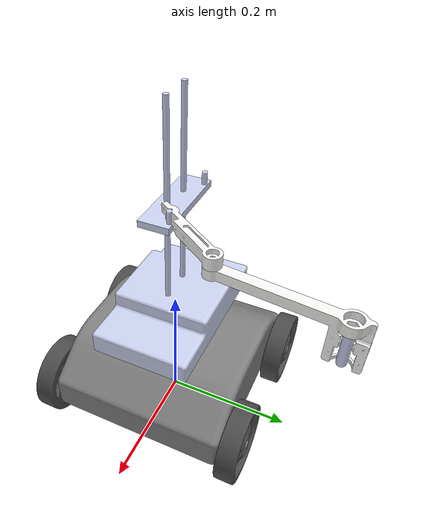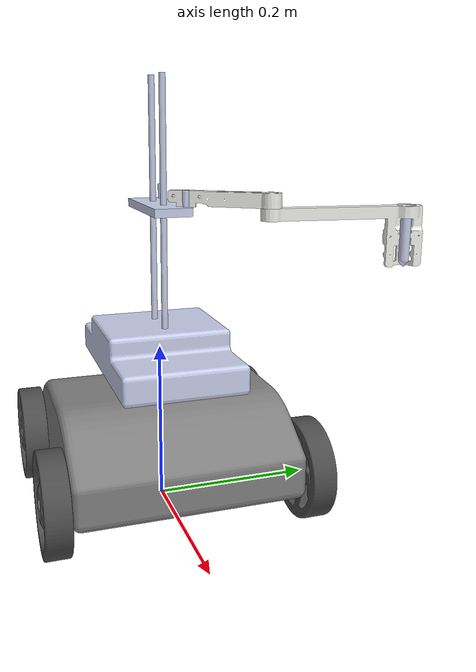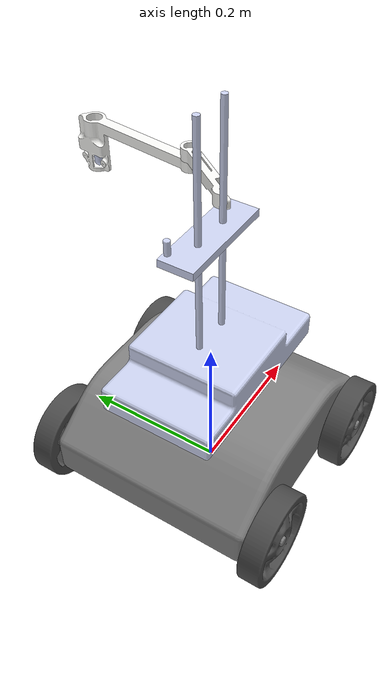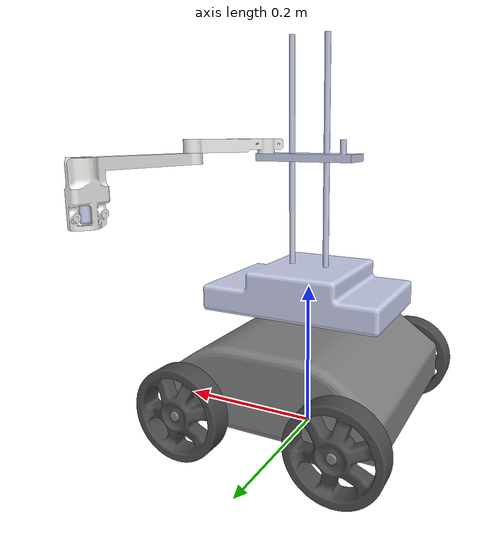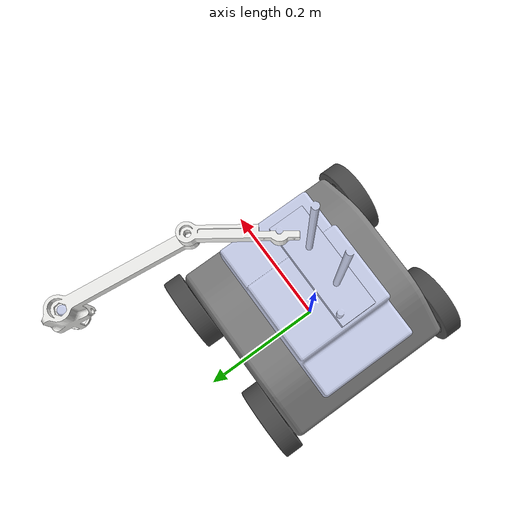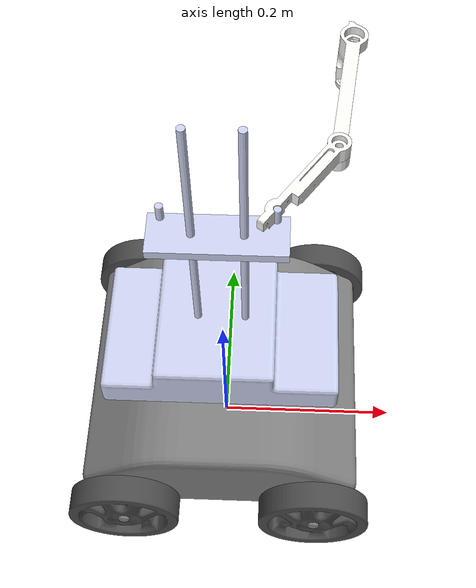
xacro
<?xml version="1.0" encoding="utf-8"?>
<robot
  name="petricor_platform">
  <link
    name="base_link">
    <inertial>
      <origin
        xyz="-4.87809042607272E-17 -2.29618809443724E-17 0.0879972764105627"
        rpy="0 0 0" />
      <mass
        value="5.87636303944341" />
      <inertia
        ixx="0.0760058697508826"
        ixy="1.4007807365218E-17"
        ixz="-4.91658511235952E-18"
        iyy="0.0517448560797098"
        iyz="-9.02756484418171E-19"
        izz="0.113814268741791" />
    </inertial>
    <visual>
      <origin
        xyz="0 0 0"
        rpy="0 0 0" />
      <geometry>
        <mesh
          filename="model://base_link.STL" />
      </geometry>
      <material
        name="">
        <color
          rgba="0.501960784313725 0.501960784313725 0.501960784313725 1" />
      </material>
    </visual>
    <collision>
      <origin
        xyz="0 0 0"
        rpy="0 0 0" />
      <geometry>
        <mesh
          filename="model://base_link.STL" />
      </geometry>
    </collision>
    <self_collide>0</self_collide>
  </link>
  <link
    name="wheel_FL">
    <inertial>
      <origin
        xyz="-0.015313 1.0317E-10 -6.0577E-11"
        rpy="0 0 0" />
      <mass
        value="0.2085" />
      <inertia
        ixx="0.00044907"
        ixy="-3.2704E-13"
        ixz="4.029E-13"
        iyy="0.00023777"
        iyz="-1.0058E-11"
        izz="0.00023777" />
    </inertial>
    <visual>
      <origin
        xyz="0 0 0"
        rpy="0 0 0" />
      <geometry>
        <mesh
          filename="model://wheel_FL.STL" />
      </geometry>
      <material
        name="">
        <color
          rgba="0.29804 0.29804 0.29804 1" />
      </material>
    </visual>
    <collision>
      <origin
        xyz="0 0 0"
        rpy="0 0 0" />
      <geometry>
        <mesh
          filename="model://wheel_FL.STL" />
      </geometry>
      <friction>
        <ode>
          <mu>5.0</mu>
          <mu2>5.0</mu2>
        </ode>
      </friction>
    </collision>
    <self_collide>0</self_collide>
  </link>
  <joint
    name="wheel_FL_rev"
    type="continuous">
    <origin
      xyz="0.10549 0.169 0.061"
      rpy="-0.33421 0 1.5708" />
    <parent
      link="base_link" />
    <child
      link="wheel_FL" />
    <axis
      xyz="-1 0 0" />
    <limit
      lower="0"
      upper="0"
      effort="1000000"
      velocity="1000" />
  </joint>
  <link
    name="wheel_FR">
    <inertial>
      <origin
        xyz="-0.015313 1.0317E-10 -6.0577E-11"
        rpy="0 0 0" />
      <mass
        value="0.2085" />
      <inertia
        ixx="0.00044907"
        ixy="-3.2704E-13"
        ixz="4.029E-13"
        iyy="0.00023777"
        iyz="1.788E-11"
        izz="0.00023777" />
    </inertial>
    <visual>
      <origin
        xyz="0 0 0"
        rpy="0 0 0" />
      <geometry>
        <mesh
          filename="model://wheel_FR.STL" />
      </geometry>
      <material
        name="">
        <color
          rgba="0.29804 0.29804 0.29804 1" />
      </material>
    </visual>
    <collision>
      <origin
        xyz="0 0 0"
        rpy="0 0 0" />
      <geometry>
        <mesh
          filename="model://wheel_FR.STL" />
      </geometry>
      <friction>
        <ode>
          <mu>5.0</mu>
          <mu2>5.0</mu2>
        </ode>
      </friction>
    </collision>
    <self_collide>0</self_collide>
  </link>
  <joint
    name="wheel_FR_rev"
    type="continuous">
    <origin
      xyz="0.10549 -0.169 0.061"
      rpy="-2.9492 0 -1.5708" />
    <parent
      link="base_link" />
    <child
      link="wheel_FR" />
    <axis
      xyz="-1 0 0" />
    <limit
      lower="0"
      upper="0"
      effort="1000000"
      velocity="1000" />
  </joint>
  <link
    name="wheel_BL">
    <inertial>
      <origin
        xyz="-0.015313 1.0317E-10 -6.0577E-11"
        rpy="0 0 0" />
      <mass
        value="0.2085" />
      <inertia
        ixx="0.00044907"
        ixy="-3.2704E-13"
        ixz="4.029E-13"
        iyy="0.00023777"
        iyz="-3.5686E-13"
        izz="0.00023777" />
    </inertial>
    <visual>
      <origin
        xyz="0 0 0"
        rpy="0 0 0" />
      <geometry>
        <mesh
          filename="model://wheel_BL.STL" />
      </geometry>
      <material
        name="">
        <color
          rgba="0.29804 0.29804 0.29804 1" />
      </material>
    </visual>
    <collision>
      <origin
        xyz="0 0 0"
        rpy="0 0 0" />
      <geometry>
        <mesh
          filename="model://wheel_BL.STL" />
      </geometry>
      <friction>
        <ode>
          <mu>5.0</mu>
          <mu2>5.0</mu2>
        </ode>
      </friction>
    </collision>
    <self_collide>0</self_collide>
  </link>
  <joint
    name="wheel_BL_rev"
    type="continuous">
    <origin
      xyz="-0.10549 0.169 0.061"
      rpy="0.82175 0 1.5708" />
    <parent
      link="base_link" />
    <child
      link="wheel_BL" />
    <axis
      xyz="-1 0 0" />
    <limit
      lower="0"
      upper="0"
      effort="1000000"
      velocity="1000" />
  </joint>
  <link
    name="wheel_BR">
    <inertial>
      <origin
        xyz="-0.015313 1.0317E-10 -6.0577E-11"
        rpy="0 0 0" />
      <mass
        value="0.2085" />
      <inertia
        ixx="0.00044907"
        ixy="-3.2704E-13"
        ixz="4.0289E-13"
        iyy="0.00023777"
        iyz="-8.8928E-12"
        izz="0.00023777" />
    </inertial>
    <visual>
      <origin
        xyz="0 0 0"
        rpy="0 0 0" />
      <geometry>
        <mesh
          filename="model://wheel_BR.STL" />
      </geometry>
      <material
        name="">
        <color
          rgba="0.29804 0.29804 0.29804 1" />
      </material>
    </visual>
    <collision>
      <origin
        xyz="0 0 0"
        rpy="0 0 0" />
      <geometry>
        <mesh
          filename="model://wheel_BR.STL" />
      </geometry>
      <friction>
        <ode>
          <mu>5.0</mu>
          <mu2>5.0</mu2>
        </ode>
      </friction>
    </collision>
    <self_collide>0</self_collide>
  </link>
  <joint
    name="wheel_BR_rev"
    type="continuous">
    <origin
      xyz="-0.10549 -0.169 0.061"
      rpy="0.53438 0 -1.5708" />
    <parent
      link="base_link" />
    <child
      link="wheel_BR" />
    <axis
      xyz="-1 0 0" />
    <limit
      lower="0"
      upper="0"
      effort="1000000"
      velocity="1000" />
  </joint>

  <link
    name="arm_base_link">
    <inertial>
      <origin
        xyz="-1.3323E-15 0.001416 0.028579"
        rpy="0 0 0" />
      <mass
        value="1.8167" />
      <inertia
        ixx="0.0092008"
        ixy="4.2883E-17"
        ixz="1.8255E-17"
        iyy="0.0050311"
        iyz="-4.9106E-05"
        izz="0.010824" />
    </inertial>
    <visual>
      <origin
        xyz="0 0 0"
        rpy="0 0 0" />
      <geometry>
        <mesh
          filename="model://arm_base_link.STL" />
      </geometry>
      <material
        name="">
        <color
          rgba="0.79216 0.81961 0.93333 1" />
      </material>
    </visual>
    <collision>
      <origin
        xyz="0 0 0"
        rpy="0 0 0" />
      <geometry>
        <mesh
          filename="model://arm_base_link.STL" />
      </geometry>
    </collision>
  </link>
  <joint
    name="arm_base_joint"
    type="revolute">
    <origin
      xyz="0 0 .17"
      rpy="0 0 1.57079" />
    <parent
      link="base_link" />
    <child
      link="arm_base_link" />
    <axis
      xyz="0 0 1" />
    <limit
      lower="0"
      upper="0"
      effort="0"
      velocity="0" />
  </joint>
  <link
    name="z_link">
    <inertial>
      <origin
        xyz="0.00052515 6.5815E-15 0.0054279"
        rpy="0 0 0" />
      <mass
        value="0.061611" />
      <inertia
        ixx="9.8218E-05"
        ixy="9.7777E-19"
        ixz="-4.4627E-07"
        iyy="1.1718E-05"
        iyz="-1.3574E-18"
        izz="0.00010811" />
    </inertial>
    <visual>
      <origin
        xyz="0 0 0"
        rpy="0 0 0" />
      <geometry>
        <mesh
          filename="model://z_link.STL" />
      </geometry>
      <material
        name="">
        <color
          rgba="0.79216 0.81961 0.93333 1" />
      </material>
    </visual>
    <collision>
      <origin
        xyz="0 0 0"
        rpy="0 0 0" />
      <geometry>
        <mesh
          filename="model://z_link.STL" />
      </geometry>
    </collision>
  </link>
  <joint
    name="z_prism"
    type="prismatic">
    <origin
      xyz="0.00097648 0 0.060561"
      rpy="0 0 0" />
    <parent
      link="arm_base_link" />
    <child
      link="z_link" />
    <axis
      xyz="0 0 1" />
    <limit
      lower="0.01"
      upper="0.27"
      effort="100"
      velocity="100" />
  </joint>
  <link
    name="right_shldr_link">
    <inertial>
      <origin
        xyz="0.052774 0.0011402 -0.0081027"
        rpy="0 0 0" />
      <mass
        value="0.025561" />
      <inertia
        ixx="1.2589E-06"
        ixy="1.5186E-06"
        ixz="2.2459E-07"
        iyy="3.4818E-05"
        iyz="4.9752E-09"
        izz="3.495E-05" />
    </inertial>
    <visual>
      <origin
        xyz="0 0 0"
        rpy="0 0 0" />
      <geometry>
        <mesh
          filename="model://right_shldr_link.STL" />
      </geometry>
      <material
        name="">
        <color
          rgba="0.96471 0.96471 0.95294 1" />
      </material>
    </visual>
    <collision>
      <origin
        xyz="0 0 0"
        rpy="0 0 0" />
      <geometry>
        <mesh
          filename="model://right_shldr_link.STL" />
      </geometry>
    </collision>
  </link>
  <joint
    name="right_shldr_rev"
    type="revolute">
    <origin
      xyz="0.017454 -0.055 0.028419"
      rpy="0 0 -0.61584" />
    <parent
      link="z_link" />
    <child
      link="right_shldr_link" />
    <axis
      xyz="0 0 -1" />
    <limit
      lower="-1.0"
      upper="1.0"
      effort="100"
      velocity="100" />
  </joint>
  <link
    name="right_elbw_link">
    <inertial>
      <origin
        xyz="0.10936 0.0025108 -0.015181"
        rpy="0 0 0" />
      <mass
        value="0.052137" />
      <inertia
        ixx="1.8081E-05"
        ixy="-6.9009E-06"
        ixz="2.9597E-05"
        iyy="0.00019669"
        iyz="2.6836E-06"
        izz="0.00018284" />
    </inertial>
    <visual>
      <origin
        xyz="0 0 0"
        rpy="0 0 0" />
      <geometry>
        <mesh
          filename="model://right_elbw_link.STL" />
      </geometry>
      <material
        name="">
        <color
          rgba="0.96471 0.96471 0.95294 1" />
      </material>
    </visual>
    <collision>
      <origin
        xyz="0 0 0"
        rpy="0 0 0" />
      <geometry>
        <mesh
          filename="model://right_elbw_link.STL" />
      </geometry>
    </collision>
  </link>
  <joint
    name="right_elbw_rev"
    type="revolute">
    <origin
      xyz="0.1 0 -0.018419"
      rpy="0 0 1.4276" />
    <parent
      link="right_shldr_link" />
    <child
      link="right_elbw_link" />
    <axis
      xyz="0 0 -1" />
    <limit
      lower="0.1"
      upper="1.75"
      effort="100"
      velocity="100" />
  </joint>
  <link
    name="EE_link">
    <inertial>
      <origin
        xyz="-7.1124E-15 4.8087E-15 0.030953"
        rpy="0 0 0" />
      <mass
        value="0.0062757" />
      <inertia
        ixx="1.5736E-06"
        ixy="7.714E-35"
        ixz="7.8936E-23"
        iyy="1.5736E-06"
        iyz="2.6001E-22"
        izz="1.1427E-07" />
    </inertial>
    <visual>
      <origin
        xyz="0 0 0"
        rpy="0 0 0" />
      <geometry>
        <mesh
          filename="model://EE_link.STL" />
      </geometry>
      <material
        name="">
        <color
          rgba="0.79216 0.81961 0.93333 1" />
      </material>
    </visual>
    <collision>
      <origin
        xyz="0 0 0"
        rpy="0 0 0" />
      <geometry>
        <mesh
          filename="model://EE_link.STL" />
      </geometry>
    </collision>
  </link>
  <joint
    name="EE_fixed"
    type="fixed">
    <origin
      xyz="0.1618 0 -0.07008"
      rpy="0 0 0" />
    <parent
      link="right_elbw_link" />
    <child
      link="EE_link" />
    <axis
      xyz="0 0 0" />
  </joint>

   <ros2_control name="GazeboSystem" type="system">
    <hardware>
      <plugin>gazebo_ros2_control/GazeboSystem</plugin>
    </hardware>

    <joint name="wheel_FL_rev">
      <command_interface name="velocity">
        <param name="min">"-1000"</param>
        <param name="max">"1000"</param>
      </command_interface>
      <state_interface name="position"/>
      <state_interface name="velocity"/>
      <state_interface name="effort"/>
    </joint>

      <joint name="wheel_FR_rev">
      <command_interface name="velocity">
        <param name="min">"-1000"</param>
        <param name="max">"1000"</param>
      </command_interface>
      <state_interface name="position"/>
      <state_interface name="velocity"/>
      <state_interface name="effort"/>
    </joint>

      <joint name="wheel_BL_rev">
      <command_interface name="velocity">
        <param name="min">"-1000"</param>
        <param name="max">"1000"</param>
      </command_interface>
      <state_interface name="position"/>
      <state_interface name="velocity"/>
      <state_interface name="effort"/>
    </joint>

      <joint name="wheel_BR_rev">
      <command_interface name="velocity">
        <param name="min">"-1000"</param>
        <param name="max">"1000"</param>
      </command_interface>
      <state_interface name="position"/>
      <state_interface name="velocity"/>
      <state_interface name="effort"/>
    </joint>

    <joint name="right_shldr_rev">
      <command_interface name="position">
        <param name="min">"-1000"</param>
        <param name="max">"1000"</param>
      </command_interface>
      <state_interface name="position"/>
      <state_interface name="velocity"/>
      <state_interface name="effort"/>
    </joint>

    <joint name="right_elbw_rev">
      <command_interface name="position">
        <param name="min">"-1000"</param>
        <param name="max">"1000"</param>
      </command_interface>
      <state_interface name="position"/>
      <state_interface name="velocity"/>
      <state_interface name="effort"/>
    </joint>

  </ros2_control>

  <gazebo>
    <plugin name="gazebo_ros2_control" filename="libgazebo_ros2_control.so">
     <robot_param>robot_description</robot_param>
      <robot_param_node>robot_state_publisher</robot_param_node>
     <parameters>$(find platform_description)/config/combined.yaml</parameters>
    </plugin>

    <!-- 3D Pose publisher (emulate motion capture) -->
    <!-- See: https://github.com/ros-simulation/gazebo_ros_pkgs/wiki/ROS-2-Migration:-P3D -->
    <plugin name="gazebo_ros_p3d" filename="libgazebo_ros_p3d.so">
      <ros>
        <!-- Add namespace and remap the default topic -->
        <namespace>/petricor_platform</namespace>
        <argument>odom:=gazebo_odom</argument>
      </ros>

      <!-- Replace camelCase elements with camel_case ones -->
      <body_name>base_link</body_name>
      <frame_name>world</frame_name>
      <update_rate>50</update_rate> <!-- If set to 0, or don't include, will default to max possible -->
      <xyz_offset>0 0 0</xyz_offset>
      <rpy_offset>0 0 0</rpy_offset>
      <gaussian_noise>0.0001</gaussian_noise>

    </plugin>
  </gazebo>
</robot>
